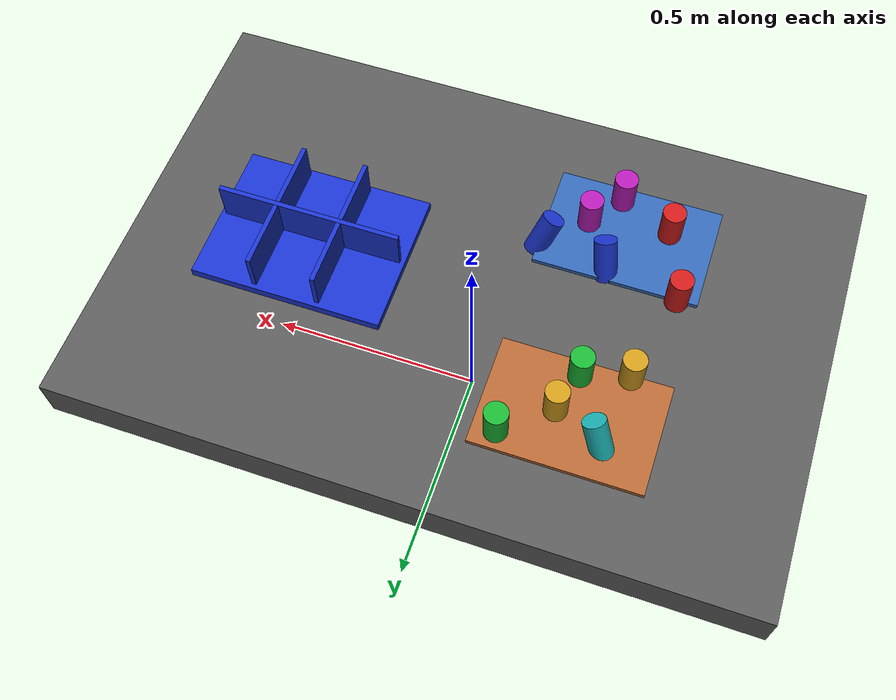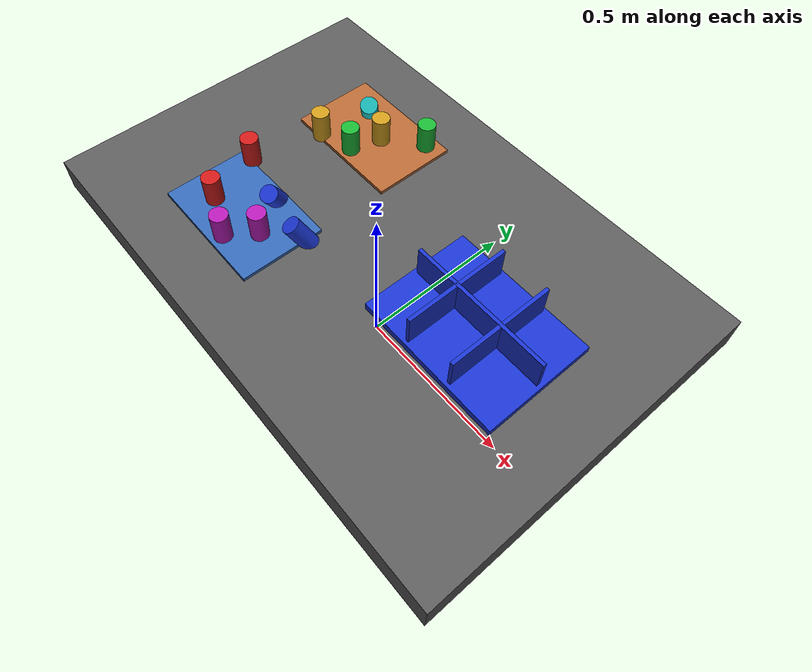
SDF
<?xml version="1.0" ?>
<sdf version="1.9">
  <!-- Standalone M1B scene.  The controller-backed Panda is spawned by the
       existing launch path; this file never alters the frozen M1A cube world. -->
  <world name="industrial_cylinder_v1">
    <physics name="bullet" type="bullet"><max_step_size>0.001</max_step_size><real_time_factor>1.0</real_time_factor></physics>
    <plugin name="gz::sim::systems::Physics" filename="gz-sim-physics-system"><engine><filename>gz-physics-bullet-featherstone-plugin</filename></engine></plugin>
    <plugin name="gz::sim::systems::UserCommands" filename="gz-sim-user-commands-system"/>
    <plugin name="gz::sim::systems::SceneBroadcaster" filename="gz-sim-scene-broadcaster-system"/>
    <plugin name="gz::sim::systems::Sensors" filename="gz-sim-sensors-system"><render_engine>ogre2</render_engine></plugin>
    <gravity>0 0 -9.81</gravity>
    <light type="directional" name="industrial_light"><pose>0 0 5 0 0 0</pose><direction>-0.3 0.2 -0.9</direction><diffuse>0.9 0.9 0.9 1</diffuse></light>
    <model name="industrial_work_table"><static>true</static><link name="link"><pose>0 0 0.4 0 0 0</pose><collision name="collision"><geometry><box><size>1.5 1.0 0.1</size></box></geometry></collision><visual name="visual"><geometry><box><size>1.5 1.0 0.1</size></box></geometry><material><diffuse>0.35 0.35 0.35 1</diffuse></material></visual></link></model>
    <model name="camera_fixture"><static>true</static><link name="camera_rgbd"><pose>-0.80 -0.80 1.40 0 0.77 0.93</pose><sensor name="front_rgbd" type="rgbd_camera"><always_on>1</always_on><update_rate>15</update_rate><topic>/xh/camera/rgbd</topic><camera><horizontal_fov>1.047</horizontal_fov><image><width>640</width><height>480</height><format>R8G8B8</format></image><clip><near>0.1</near><far>4.0</far></clip></camera></sensor></link></model>
    <model name="incoming_zone_a"><static>true</static><link name="link"><pose>-0.28 -0.22 0.455 0 0 0</pose><visual name="visual"><geometry><box><size>0.36 0.24 0.01</size></box></geometry><material><diffuse>0.2 0.4 0.7 1</diffuse></material></visual></link></model>
    <model name="incoming_zone_b"><static>true</static><link name="link"><pose>-0.28 0.22 0.455 0 0 0</pose><visual name="visual"><geometry><box><size>0.36 0.24 0.01</size></box></geometry><material><diffuse>0.7 0.4 0.2 1</diffuse></material></visual></link></model>
    <!-- M1B_RANDOM_PARTS_BEGIN -->
    <model name="cylinder_01"><pose>-0.4153 -0.0971 0.5000 0.0000 0.0000 -0.4613</pose><link name="link"><inertial><mass>0.06</mass></inertial><collision name="collision"><geometry><cylinder><radius>0.025</radius><length>0.09</length></cylinder></geometry></collision><visual name="visual"><geometry><cylinder><radius>0.025</radius><length>0.09</length></cylinder></geometry><material><diffuse>0.800 0.100 0.100 1</diffuse><specular>0.15 0.15 0.15 1</specular></material></visual></link></model>
    <model name="cylinder_02"><pose>-0.2733 0.1354 0.5000 3.1416 0.0000 1.1730</pose><link name="link"><inertial><mass>0.06</mass></inertial><collision name="collision"><geometry><cylinder><radius>0.025</radius><length>0.09</length></cylinder></geometry></collision><visual name="visual"><geometry><cylinder><radius>0.025</radius><length>0.09</length></cylinder></geometry><material><diffuse>0.100 0.700 0.200 1</diffuse><specular>0.15 0.15 0.15 1</specular></material></visual></link></model>
    <model name="cylinder_03"><pose>-0.2497 -0.1376 0.4800 0.4500 -0.3000 0.9616</pose><link name="link"><inertial><mass>0.06</mass></inertial><collision name="collision"><geometry><cylinder><radius>0.025</radius><length>0.09</length></cylinder></geometry></collision><visual name="visual"><geometry><cylinder><radius>0.025</radius><length>0.09</length></cylinder></geometry><material><diffuse>0.100 0.200 0.800 1</diffuse><specular>0.15 0.15 0.15 1</specular></material></visual></link></model>
    <model name="cylinder_04"><pose>-0.3719 0.1092 0.5000 0.0000 0.0000 0.3283</pose><link name="link"><inertial><mass>0.06</mass></inertial><collision name="collision"><geometry><cylinder><radius>0.025</radius><length>0.09</length></cylinder></geometry></collision><visual name="visual"><geometry><cylinder><radius>0.025</radius><length>0.09</length></cylinder></geometry><material><diffuse>0.800 0.600 0.100 1</diffuse><specular>0.15 0.15 0.15 1</specular></material></visual></link></model>
    <model name="cylinder_05"><pose>-0.1899 -0.2280 0.5000 3.1416 0.0000 -2.5972</pose><link name="link"><inertial><mass>0.06</mass></inertial><collision name="collision"><geometry><cylinder><radius>0.025</radius><length>0.09</length></cylinder></geometry></collision><visual name="visual"><geometry><cylinder><radius>0.025</radius><length>0.09</length></cylinder></geometry><material><diffuse>0.700 0.100 0.700 1</diffuse><specular>0.15 0.15 0.15 1</specular></material></visual></link></model>
    <model name="cylinder_06"><pose>-0.3459 0.2623 0.4800 0.4500 -0.3000 1.3663</pose><link name="link"><inertial><mass>0.06</mass></inertial><collision name="collision"><geometry><cylinder><radius>0.025</radius><length>0.09</length></cylinder></geometry></collision><visual name="visual"><geometry><cylinder><radius>0.025</radius><length>0.09</length></cylinder></geometry><material><diffuse>0.100 0.700 0.700 1</diffuse><specular>0.15 0.15 0.15 1</specular></material></visual></link></model>
    <model name="cylinder_07"><pose>-0.3622 -0.2520 0.5000 0.0000 0.0000 3.0978</pose><link name="link"><inertial><mass>0.06</mass></inertial><collision name="collision"><geometry><cylinder><radius>0.025</radius><length>0.09</length></cylinder></geometry></collision><visual name="visual"><geometry><cylinder><radius>0.025</radius><length>0.09</length></cylinder></geometry><material><diffuse>0.800 0.100 0.100 1</diffuse><specular>0.15 0.15 0.15 1</specular></material></visual></link></model>
    <model name="cylinder_08"><pose>-0.1497 0.3026 0.5000 3.1416 0.0000 -0.7662</pose><link name="link"><inertial><mass>0.06</mass></inertial><collision name="collision"><geometry><cylinder><radius>0.025</radius><length>0.09</length></cylinder></geometry></collision><visual name="visual"><geometry><cylinder><radius>0.025</radius><length>0.09</length></cylinder></geometry><material><diffuse>0.100 0.700 0.200 1</diffuse><specular>0.15 0.15 0.15 1</specular></material></visual></link></model>
    <model name="cylinder_09"><pose>-0.1087 -0.1572 0.4800 0.4500 -0.3000 -0.1094</pose><link name="link"><inertial><mass>0.06</mass></inertial><collision name="collision"><geometry><cylinder><radius>0.025</radius><length>0.09</length></cylinder></geometry></collision><visual name="visual"><geometry><cylinder><radius>0.025</radius><length>0.09</length></cylinder></geometry><material><diffuse>0.100 0.200 0.800 1</diffuse><specular>0.15 0.15 0.15 1</specular></material></visual></link></model>
    <model name="cylinder_10"><pose>-0.2478 0.2227 0.5000 0.0000 0.0000 -1.2744</pose><link name="link"><inertial><mass>0.06</mass></inertial><collision name="collision"><geometry><cylinder><radius>0.025</radius><length>0.09</length></cylinder></geometry></collision><visual name="visual"><geometry><cylinder><radius>0.025</radius><length>0.09</length></cylinder></geometry><material><diffuse>0.800 0.600 0.100 1</diffuse><specular>0.15 0.15 0.15 1</specular></material></visual></link></model>
    <model name="cylinder_11"><pose>-0.2449 -0.3033 0.5000 3.1416 0.0000 1.0538</pose><link name="link"><inertial><mass>0.06</mass></inertial><collision name="collision"><geometry><cylinder><radius>0.025</radius><length>0.09</length></cylinder></geometry></collision><visual name="visual"><geometry><cylinder><radius>0.025</radius><length>0.09</length></cylinder></geometry><material><diffuse>0.700 0.100 0.700 1</diffuse><specular>0.15 0.15 0.15 1</specular></material></visual></link></model>
    <!-- M1B_RANDOM_PARTS_END -->
    <model name="blue_partition_bin"><static>true</static><pose>0.36 0 0.45 0 0 0</pose><link name="link"><collision name="floor"><pose>0 0 0.01 0 0 0</pose><geometry><box><size>0.42 0.32 0.02</size></box></geometry></collision><visual name="floor_visual"><pose>0 0 0.01 0 0 0</pose><geometry><box><size>0.42 0.32 0.02</size></box></geometry><material><diffuse>0.1 0.2 0.8 1</diffuse></material></visual><visual name="row_divider"><pose>0 0 0.06 0 0 0</pose><geometry><box><size>0.40 0.01 0.10</size></box></geometry><material><diffuse>0.1 0.2 0.8 1</diffuse></material></visual><visual name="col_divider_a"><pose>-0.07 0 0.06 0 0 0</pose><geometry><box><size>0.01 0.30 0.10</size></box></geometry><material><diffuse>0.1 0.2 0.8 1</diffuse></material></visual><visual name="col_divider_b"><pose>0.07 0 0.06 0 0 0</pose><geometry><box><size>0.01 0.30 0.10</size></box></geometry><material><diffuse>0.1 0.2 0.8 1</diffuse></material></visual></link></model>
    <!-- Reserved only: second table, bin transport corridor, stackable-bin
         collision volume, and second arm mounting namespace. -->
  </world>
</sdf>
